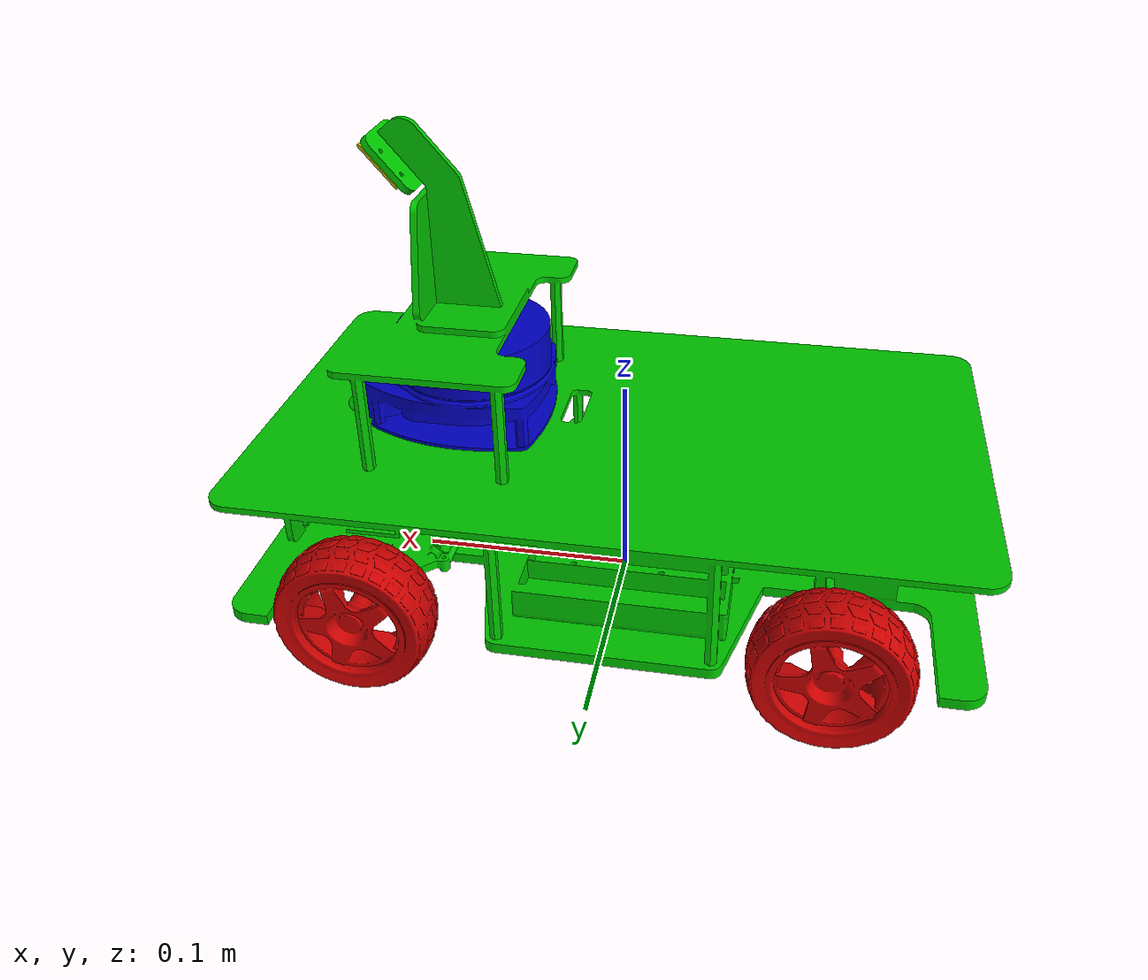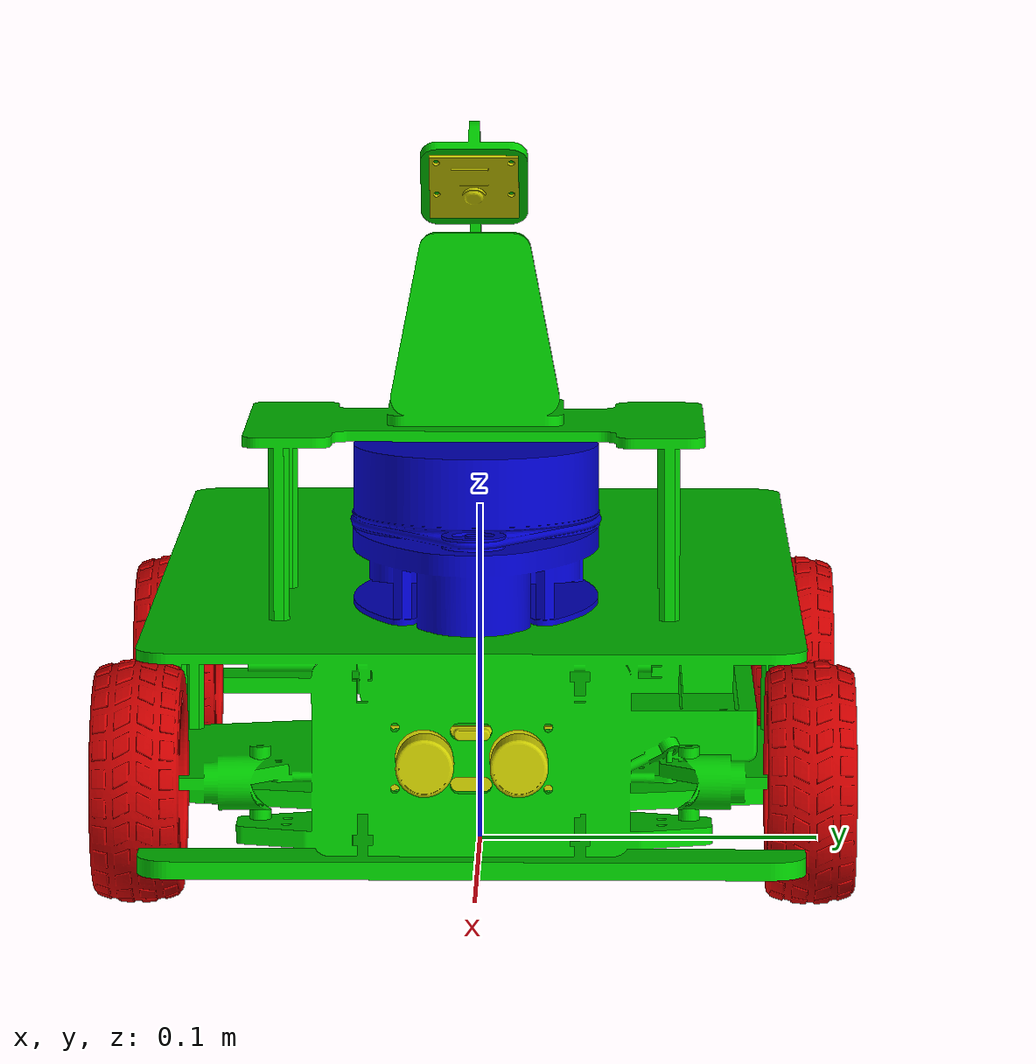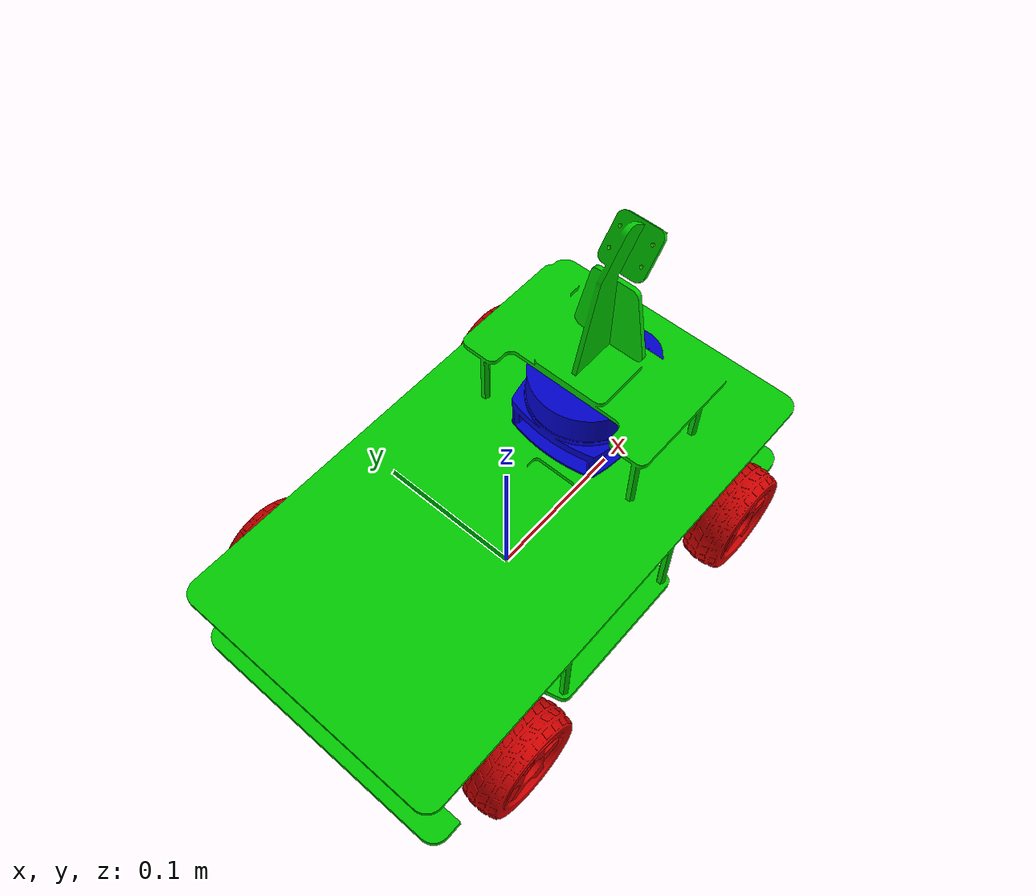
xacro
<?xml version="1.0"?>
<robot name="uni_car" xmlns:xacro="http://wiki.ros.org/xacro">
  <xacro:arg name="laser_visual" default="false"/>
  <xacro:arg name="imu_visual"   default="false"/>
  <xacro:arg name="camera_visual" default="false"/>
  <xacro:arg name="sonar_visual" default="false"/>

  <!-- Include xacro for materials -->
  <xacro:include filename="$(find uni_car)/urdf/materials.xacro"/>

  <!-- Properties -->
  <xacro:property name="robot_namespace" value=""/>

  <xacro:property name="steer_effort" value="10.0"/>
  <xacro:property name="steer_velocity" value="5.0"/>
  <xacro:property name="steer_limit_deg" value="30.0"/>

  <!-- Math constants -->
  <xacro:property name="deg_to_rad" value="0.01745329251994329577"/>
  <xacro:property name="math_pi"        value="3.141592653589793" />
  <xacro:property name="math_pi_over_2" value="1.5707963267948966" />
  <xacro:property name="math_pi_over_4" value="0.785398163397448" />

  <!-- Robot base dimensions -->
  <xacro:property name="base_length" value="0.300" />
  <xacro:property name="base_width" value="0.185" />
  <xacro:property name="base_height" value="0.07" />
  <xacro:property name="base_mass" value="0.5" />
  <xacro:property name="ground_clearance" value="0.019" />
  <xacro:property name="wheel_separation" value="0.190" />
  <xacro:property name="wheel_base" value="0.200" />

  <xacro:property name="wheel_separation_h" value="${wheel_base}" />
  <xacro:property name="wheel_separation_w" value="${wheel_separation}" />

  <!-- Wheel link dimensions -->
  <xacro:property name="wheel_radius" value="0.035" />
  <xacro:property name="wheel_thickness" value="0.025" />
  <xacro:property name="wheel_mass" value="0.02" />

  <!-- Steering link dimensions -->
  <xacro:property name="steer_radius" value="0.001" />
  <xacro:property name="steer_thickness" value="0.001" />
  <xacro:property name="steer_mass" value="0.001" />
  <xacro:property name="steer_offset" value="0.002" />
  <xacro:property name="steer_height" value="0.002" />

  <!-- Gazebo plugins -->
  <gazebo>
    <!-- Load ros_control plugin using the steer_bot_hardware_gazebo
    implementation of the hardware_interface::RobotHW -->
    <plugin name="gazebo_ros_control" filename="libgazebo_ros_control.so">
      <robotNamespace>${robot_namespace}</robotNamespace>
      <robotSimType>steer_bot_hardware_gazebo/SteerBotHardwareGazebo</robotSimType>
      <legacyModeNS>false</legacyModeNS>
    </plugin>
  </gazebo>

<!-- Base footprint) -->
<link name="base_footprint"/>

<joint name="base_footprint_joint" type="fixed">
  <origin xyz="0 0 ${ground_clearance}" rpy="0 0 0"/>
  <parent link="base_footprint"/>
  <child link="base_link"/>
</joint>

  <!-- Base link -->
  <link name="base_link">
    <visual>
      <origin xyz="0 0 0" rpy="0 0 0"/>
      <geometry>
        <mesh filename="package://uni_car/meshes/ROSCAR2_BASE.dae" scale="0.001 0.001 0.001"/>
      </geometry>
      <material name="green" />
    </visual>
    <collision>
      <origin xyz="0 0 ${base_height/2}" rpy="0 0 0"/>
      <geometry>
        <box size="${base_length} ${base_width} ${base_height}"/>
      </geometry>
    </collision>
    <inertial>
        <origin xyz="0 0 0" rpy="0 0 0"/>
        <mass value="0.85" />
        <inertia ixx="0.0022" ixy="0.0" ixz="0.0"
                 iyy="0.0021" iyz="0.0"
                 izz="0.0020" />
    </inertial>
  </link>

  <gazebo reference="base_link">
    <material>Gazebo/Green</material>
  </gazebo>

  <!-- Front steer and rear wheel joints required for ackermann_steering_controller -->
  <!-- Bicycle model front steer link (required for steer_drive_controller) -->
    <link name="front_steer_link">
      <visual>
        <origin xyz="0 0 0" rpy="0 0 0"/>
        <geometry>
          <cylinder radius="${steer_radius}" length="${steer_thickness}"/>
        </geometry>
        <material name="yellow" />
      </visual>
      <collision>
        <origin xyz="0 0 0" rpy="0 0 0"/>
        <geometry>
          <cylinder radius="${steer_radius}" length="${steer_thickness}"/>
        </geometry>
      </collision>
      <inertial>
        <origin xyz="0 0 0" rpy="0 0 0"/>
        <mass value="0.001" />
        <inertia ixx="0.001" ixy="0.0" ixz="0.0"
                 iyy="0.001" iyz="0.0"
                 izz="0.001" />
      </inertial>
    </link>

    <joint name="front_steer_joint" type="revolute">
      <parent link="base_link"/>
      <child link="front_steer_link"/>
      <origin xyz="${wheel_base/2} 0 ${wheel_radius-ground_clearance}" rpy="0 0 0"/>
      <axis xyz="0 0 1"/>
      <limit effort="${steer_effort}"
             lower="${-180.0 * deg_to_rad}" upper="${180.0 * deg_to_rad}"
             velocity="${steer_velocity}"/>
    </joint>

    <transmission name="front_steer_joint_trans">
      <type>transmission_interface/SimpleTransmission</type>
      <actuator name="front_steer_joint_motor">
        <mechanicalReduction>1</mechanicalReduction>
        <hardwareInterface>hardware_interface/PositionJointInterface</hardwareInterface>
      </actuator>
      <joint name="front_steer_joint">
        <hardwareInterface>hardware_interface/PositionJointInterface</hardwareInterface>
      </joint>
    </transmission>

    <gazebo reference="front_steer_link">
      <material>Gazebo/Yellow</material>
    </gazebo>

  <!-- Bicycle model rear wheel link (required for steer_drive_controller) -->
    <link name="rear_wheel_link">
      <visual>
        <origin xyz="0 0 0" rpy="0 0 0"/>
        <geometry>
          <cylinder radius="${steer_radius}" length="${steer_thickness}"/>
        </geometry>
        <material name="yellow" />
      </visual>
      <collision>
        <origin xyz="0 0 0" rpy="0 0 0"/>
        <geometry>
          <cylinder radius="${steer_radius}" length="${steer_thickness}"/>
        </geometry>
      </collision>
      <inertial>
        <origin xyz="0 0 0" rpy="0 0 0"/>
        <mass value="0.001" />
        <inertia ixx="0.001" ixy="0.0" ixz="0.0"
                 iyy="0.001" iyz="0.0"
                 izz="0.001" />
      </inertial>
    </link>

    <joint name="rear_wheel_joint" type="continuous">
      <parent link="base_link"/>
      <child link="rear_wheel_link"/>
      <origin xyz="-${wheel_base/2} 0 0" rpy="0 0 0"/>
      <axis xyz="0 0 1"/>
    </joint>

    <transmission name="rear_wheel_joint_trans">
      <type>transmission_interface/SimpleTransmission</type>
      <actuator name="rear_wheel_joint_motor">
        <mechanicalReduction>1</mechanicalReduction>
        <hardwareInterface>hardware_interface/VelocityJointInterface</hardwareInterface>
      </actuator>
      <joint name="rear_wheel_joint">
        <hardwareInterface>hardware_interface/VelocityJointInterface</hardwareInterface>
      </joint>
    </transmission>

    <gazebo reference="rear_wheel_link">
      <material>Gazebo/Yellow</material>
    </gazebo>

  <!-- front_right_steer, front_right_wheel -->
     <link name="front_right_steer_link">
      <visual>
        <origin xyz="0 0 0" rpy="0 0 0"/>
        <geometry>
          <cylinder radius="${steer_radius}" length="${steer_thickness}"/>
        </geometry>
        <material name="blue" />
      </visual>
      <collision>
        <origin xyz="0 0 0" rpy="0 0 0"/>
        <geometry>
          <cylinder radius="${steer_radius}" length="${steer_thickness}"/>
        </geometry>
      </collision>
      <inertial>
        <origin xyz="0 0 0" rpy="0 0 0"/>
        <mass value="0.001" />
        <inertia ixx="0.001" ixy="0.0" ixz="0.0"
                 iyy="0.001" iyz="0.0"
                 izz="0.001" />
      </inertial>
    </link>

    <joint name="front_right_steer_joint" type="revolute">
      <parent link="base_link"/>
      <child link="front_right_steer_link"/>
      <origin xyz="${wheel_base/2} -${wheel_separation/2} ${wheel_radius - ground_clearance}" rpy="0 0 0"/>
      <axis xyz="0 0 1"/>
      <limit effort="${steer_effort}"
             lower="-${steer_limit_deg * deg_to_rad}" upper="${steer_limit_deg * deg_to_rad}"
             velocity="${steer_velocity}"/>
    </joint>

    <gazebo reference="front_right_steer_link">
      <material>Gazebo/Blue</material>
    </gazebo>

    <link name="front_right_wheel_link">
      <visual>
        <origin xyz="0 0 0" rpy="${90*deg_to_rad} 0 0"/>
        <geometry>
          <mesh filename="package://uni_car/meshes/ROSCAR2_WheelRight.dae" scale="0.001 0.001 0.001"/>
        </geometry>
        <material name="red" />
      </visual>
      <collision>
        <origin xyz="0 0 0" rpy="0 0 0"/>
        <geometry>
          <cylinder radius="${wheel_radius}" length="${wheel_thickness}"/>
        </geometry>
      </collision>
      <inertial>
        <origin xyz="0 0 0" rpy="0 0 0"/>
        <mass value="0.028" />
        <inertia ixx="0.00001" ixy="0.0" ixz="0.0"
                 iyy="0.00001" iyz="0.0"
                 izz="0.00001" />
      </inertial>
    </link>

    <joint name="front_right_wheel_joint" type="continuous">
      <parent link="front_right_steer_link"/>
      <child link="front_right_wheel_link"/>
      <origin xyz="0 0 0" rpy="-${90*deg_to_rad} 0 0"/>
      <axis xyz="0 0 1"/>
    </joint>

    <transmission name="front_right_steer_joint_trans">
      <type>transmission_interface/SimpleTransmission</type>
      <actuator name="front_right_steer_joint_motor">
        <mechanicalReduction>1</mechanicalReduction>
        <hardwareInterface>hardware_interface/PositionJointInterface</hardwareInterface>
      </actuator>
      <joint name="front_right_steer_joint">
        <hardwareInterface>hardware_interface/PositionJointInterface</hardwareInterface>
      </joint>
    </transmission>

    <transmission name="front_right_wheel_joint_trans">
      <type>transmission_interface/SimpleTransmission</type>
      <actuator name="front_right_wheel_joint_motor">
        <mechanicalReduction>1</mechanicalReduction>
        <hardwareInterface>hardware_interface/VelocityJointInterface</hardwareInterface>
      </actuator>
      <joint name="front_right_wheel_joint">
        <hardwareInterface>hardware_interface/VelocityJointInterface</hardwareInterface>
      </joint>
    </transmission>

    <gazebo reference="front_right_wheel_link">
      <mu1>10</mu1>
      <mu2>10</mu2>
      <kp>1000000.0</kp>
      <kd>1.0</kd>
      <minDepth>0.001</minDepth>
      <maxVel>0.1</maxVel>
      <fdir1>1 0 0</fdir1>
      <material>Gazebo/Red</material>
    </gazebo>

  <!-- front_left_steer, front_left_wheel -->
    <link name="front_left_steer_link">
      <visual>
        <origin xyz="0 0 0" rpy="0 0 0"/>
        <geometry>
          <cylinder radius="${steer_radius}" length="${steer_thickness}"/>
        </geometry>
        <material name="blue" />
      </visual>
      <collision>
        <origin xyz="0 0 0" rpy="0 0 0"/>
        <geometry>
          <cylinder radius="${steer_radius}" length="${steer_thickness}"/>
        </geometry>
      </collision>
      <inertial>
        <origin xyz="0 0 0" rpy="0 0 0"/>
        <mass value="0.001" />
        <inertia ixx="0.001" ixy="0.0" ixz="0.0"
                 iyy="0.001" iyz="0.0"
                 izz="0.001" />
      </inertial>
    </link>

    <joint name="front_left_steer_joint" type="revolute">
      <parent link="base_link"/>
      <child link="front_left_steer_link"/>
      <origin xyz="${wheel_base/2} ${wheel_separation/2} ${wheel_radius - ground_clearance}" rpy="0 0 0"/>
      <axis xyz="0 0 1"/>
      <limit effort="${steer_effort}"
             lower="-${steer_limit_deg * deg_to_rad}" upper="${steer_limit_deg * deg_to_rad}"
             velocity="${steer_velocity}"/>
    </joint>

    <gazebo reference="front_left_steer_link">
      <material>Gazebo/Blue</material>
    </gazebo>

    <link name="front_left_wheel_link">
      <visual>
        <origin xyz="0 0 0" rpy="${90*deg_to_rad} 0 0"/>
        <geometry>
          <mesh filename="package://uni_car/meshes/ROSCAR2_WheelLeft.dae" scale="0.001 0.001 0.001"/>
        </geometry>
        <material name="red" />
      </visual>
      <collision>
        <origin xyz="0 0 0" rpy="0 0 0"/>
        <geometry>
          <cylinder radius="${wheel_radius}" length="${wheel_thickness}"/>
        </geometry>
      </collision>
      <inertial>
        <origin xyz="0 0 0" rpy="0 0 0"/>
        <mass value="0.028" />
        <inertia ixx="0.00001" ixy="0.0" ixz="0.0"
                 iyy="0.00001" iyz="0.0"
                 izz="0.00001" />
      </inertial>
    </link>

    <joint name="front_left_wheel_joint" type="continuous">
      <parent link="front_left_steer_link"/>
      <child link="front_left_wheel_link"/>
      <origin xyz="0 0 0" rpy="-${90*deg_to_rad} 0 0"/>
      <axis xyz="0 0 1"/>
    </joint>

    <gazebo reference="front_left_wheel_link">
      <mu1>10</mu1>
      <mu2>10</mu2>
      <kp>1000000.0</kp>
      <kd>1.0</kd>
      <minDepth>0.001</minDepth>
      <maxVel>0.1</maxVel>
      <fdir1>1 0 0</fdir1>
      <material>Gazebo/Red</material>
    </gazebo>

    <transmission name="front_left_steer_joint_trans">
      <type>transmission_interface/SimpleTransmission</type>
      <actuator name="front_left_steer_joint_motor">
        <mechanicalReduction>1</mechanicalReduction>
        <hardwareInterface>hardware_interface/PositionJointInterface</hardwareInterface>
      </actuator>
      <joint name="front_left_steer_joint">
        <hardwareInterface>hardware_interface/PositionJointInterface</hardwareInterface>
      </joint>
    </transmission>

    <transmission name="front_left_wheel_joint_trans">
      <type>transmission_interface/SimpleTransmission</type>
      <actuator name="front_left_wheel_joint_motor">
        <mechanicalReduction>1</mechanicalReduction>
        <hardwareInterface>hardware_interface/VelocityJointInterface</hardwareInterface>
      </actuator>
      <joint name="front_left_wheel_joint">
        <hardwareInterface>hardware_interface/VelocityJointInterface</hardwareInterface>
      </joint>
    </transmission>

  <!-- rear_right_wheel -->
    <link name="rear_right_wheel_link">
      <visual>
        <origin xyz="0 0 0" rpy="${90*deg_to_rad} 0 0"/>
        <geometry>
          <mesh filename="package://uni_car/meshes/ROSCAR2_WheelRight.dae" scale="0.001 0.001 0.001"/>
        </geometry>
        <material name="red" />
      </visual>
      <collision>
        <origin xyz="0 0 0" rpy="0 0 0"/>
        <geometry>
          <cylinder radius="${wheel_radius}" length="${wheel_thickness}"/>
        </geometry>
      </collision>
      <inertial>
        <origin xyz="0 0 0" rpy="0 0 0"/>
        <mass value="0.028" />
        <inertia ixx="0.00001" ixy="0.0" ixz="0.0"
                 iyy="0.00001" iyz="0.0"
                 izz="0.00001" />
      </inertial>
    </link>

    <joint name="rear_right_wheel_joint" type="continuous">
      <parent link="base_link"/>
      <child link="rear_right_wheel_link"/>
      <origin xyz="-${wheel_base/2} -${wheel_separation/2} ${wheel_radius-ground_clearance}" rpy="-${90*deg_to_rad} 0 0"/>
      <axis xyz="0 0 1"/>
    </joint>

    <transmission name="rear_right_wheel_joint_trans">
      <type>transmission_interface/SimpleTransmission</type>
      <actuator name="rear_right_wheel_joint_motor">
        <mechanicalReduction>1</mechanicalReduction>
        <hardwareInterface>hardware_interface/VelocityJointInterface</hardwareInterface>
      </actuator>
      <joint name="rear_right_wheel_joint">
        <hardwareInterface>hardware_interface/VelocityJointInterface</hardwareInterface>
      </joint>
    </transmission>

    <gazebo reference="rear_right_wheel_link">
      <mu1>10</mu1>
      <mu2>10</mu2>
      <kp>1000000.0</kp>
      <kd>1.0</kd>
      <minDepth>0.001</minDepth>
      <maxVel>0.1</maxVel>
      <fdir1>1 0 0</fdir1>
      <material>Gazebo/Red</material>
    </gazebo>

  <!-- rear_left_wheel -->
    <link name="rear_left_wheel_link">
      <visual>
        <origin xyz="0 0 0" rpy="${90*deg_to_rad} 0 0"/>
        <geometry>
          <mesh filename="package://uni_car/meshes/ROSCAR2_WheelLeft.dae" scale="0.001 0.001 0.001"/>
        </geometry>
        <material name="red" />
      </visual>
      <collision>
        <origin xyz="0 0 0" rpy="0 0 0"/>
        <geometry>
          <cylinder radius="${wheel_radius}" length="${wheel_thickness}"/>
        </geometry>
      </collision>
      <inertial>
        <origin xyz="0 0 0" rpy="0 0 0"/>
        <mass value="0.028" />
        <inertia ixx="0.00001" ixy="0.0" ixz="0.0"
                 iyy="0.00001" iyz="0.0"
                 izz="0.00001" />
      </inertial>
    </link>

    <joint name="rear_left_wheel_joint" type="continuous">
      <parent link="base_link"/>
      <child link="rear_left_wheel_link"/>
      <origin xyz="-${wheel_base/2} ${wheel_separation/2} ${wheel_radius-ground_clearance}" rpy="-${90*deg_to_rad} 0 0"/>
      <axis xyz="0 0 1"/>
    </joint>

    <transmission name="rear_left_wheel_joint_trans">
      <type>transmission_interface/SimpleTransmission</type>
      <actuator name="rear_left_wheel_joint_motor">
        <mechanicalReduction>1</mechanicalReduction>
        <hardwareInterface>hardware_interface/VelocityJointInterface</hardwareInterface>
      </actuator>
      <joint name="rear_left_wheel_joint">
        <hardwareInterface>hardware_interface/VelocityJointInterface</hardwareInterface>
      </joint>
    </transmission>

    <gazebo reference="rear_left_wheel_link">
      <mu1>10</mu1>
      <mu2>10</mu2>
      <kp>1000000.0</kp>
      <kd>1.0</kd>
      <minDepth>0.001</minDepth>
      <maxVel>0.1</maxVel>
      <fdir1>1 0 0</fdir1>
      <material>Gazebo/Red</material>
    </gazebo>

<!--
    imu_link
-->
  <link name="imu_link" />

  <joint name="imu_joint" type="fixed">
    <parent link="base_link"/>
    <child link="imu_link"/>
    <origin xyz="0 0 0" rpy="0 0 0"/>
  </joint>

<!--
    base_scan
-->
  <link name="base_scan">
    <visual>
      <origin xyz="0 0 0" rpy="0 0 0"/>
      <geometry>
        <mesh filename="package://uni_car/meshes/ROSCAR2_LiDAR.dae" scale="0.001 0.001 0.001"/>
      </geometry>
      <material name="blue" />
    </visual>
    <collision>
      <origin xyz="0 0 0.10" rpy="0 0 0"/>
      <geometry>
        <cylinder radius="0.030" length="0.020"/>
      </geometry>
    </collision>
    <inertial>
        <origin xyz="0 0 0" rpy="0 0 0"/>
        <mass value="0.114" />
        <inertia ixx="0.001" ixy="0.0" ixz="0.0"
                 iyy="0.001" iyz="0.0"
                 izz="0.001" />
      </inertial>
  </link>

  <gazebo reference="base_scan">
    <material>Gazebo/Blue</material>
  </gazebo>

  <joint name="scan_joint" type="fixed">
    <parent link="base_link"/>
    <child link="base_scan"/>
    <origin xyz="0.070 0 0.099" rpy="0 0 0"/>
  </joint>

<!--
    base_sonar
-->
  <link name="base_sonar">
    <visual>
      <origin xyz="0 0 0" rpy="0 0 0"/>
      <geometry>
        <mesh filename="package://uni_car/meshes/ROSCAR2_Sonar.dae" scale="0.001 0.001 0.001"/>
      </geometry>
      <material name="yellow" />
    </visual>
    <collision>
      <origin xyz="0 0 0.10" rpy="0 0 0"/>
      <geometry>
        <box size="0.010 0.050 0.010"/>
      </geometry>
    </collision>
    <inertial>
        <origin xyz="0 0 0" rpy="0 0 0"/>
        <mass value="0.005" />
        <inertia ixx="0.001" ixy="0.0" ixz="0.0"
                 iyy="0.001" iyz="0.0"
                 izz="0.001" />
      </inertial>
  </link>

  <gazebo reference="base_sonar">
    <material>Gazebo/Blue</material>
  </gazebo>

  <joint name="sonar_joint" type="fixed">
    <parent link="base_link"/>
    <child link="base_sonar"/>
    <origin xyz="0.153 0 0.031" rpy="0 0 0"/>
  </joint>

<!--
    base_camera
-->
  <link name="base_camera">
    <visual>
      <origin xyz="-0.005 0 0" rpy="0 0 0"/>
      <geometry>
        <mesh filename="package://uni_car/meshes/ROSCAR2_PiCameraV2.dae" scale="0.001 0.001 0.001"/>
      </geometry>
      <material name="yellow" />
    </visual>
    <collision>
      <origin xyz="-0.005 0 0" rpy="0 0 0"/>
      <geometry>
        <box size="0.001 0.015 0.015"/>
      </geometry>
    </collision>
    <inertial>
        <origin xyz="0 0 0" rpy="0 0 0"/>
        <mass value="0.005" />
        <inertia ixx="0.001" ixy="0.0" ixz="0.0"
                 iyy="0.001" iyz="0.0"
                 izz="0.001" />
      </inertial>
  </link>

  <gazebo reference="base_camera">
    <material>Gazebo/Blue</material>
  </gazebo>

  <joint name="camera_joint" type="fixed">
    <parent link="base_link"/>
    <child link="base_camera"/>
    <origin xyz="0.105 0 0.180" rpy="0 ${40*deg_to_rad} 0"/>
  </joint>

<!--
    base_camera2
-->
  <link name="base_camera2">
    <collision>
      <origin xyz="-0.005 0 0" rpy="0 0 0"/>
      <geometry>
        <box size="0.001 0.015 0.015"/>
      </geometry>
    </collision>
  </link>

  <joint name="camera_joint2" type="fixed">
    <parent link="base_link"/>
    <child link="base_camera2"/>
    <origin xyz="0.25 0 0.25" rpy="0 ${40*deg_to_rad} 0"/>
  </joint>

<!--
    imu_plugin
-->
  <gazebo reference="imu_link">
    <sensor type="imu" name="imu">
      <always_on>true</always_on>
      <visualize>$(arg imu_visual)</visualize>
    </sensor>
    <material>Gazebo/FlatBlack</material>
  </gazebo>
  <gazebo>
    <plugin name="imu_plugin" filename="libgazebo_ros_imu.so">
      <alwaysOn>true</alwaysOn>
      <bodyName>imu_link</bodyName>
      <topicName>imu</topicName>
      <serviceName>imu_service</serviceName>
      <gaussianNoise>0.0</gaussianNoise>
      <updateRate>200</updateRate>
      <imu>
        <noise>
          <type>gaussian</type>
          <rate>
            <mean>0.0</mean>
            <stddev>2e-4</stddev>
            <bias_mean>0.0000075</bias_mean>
            <bias_stddev>0.0000008</bias_stddev>
          </rate>
          <accel>
            <mean>0.0</mean>
            <stddev>1.7e-2</stddev>
            <bias_mean>0.1</bias_mean>
            <bias_stddev>0.001</bias_stddev>
          </accel>
        </noise>
      </imu>
    </plugin>
  </gazebo>

<!--
    base_scan plugin
-->
    <gazebo reference="base_scan">
        <material>Gazebo/LightBlue</material>
        <sensor type="ray" name="lds_lfcd_sensor">
            <pose>0 0 0 0 0 0</pose>
            <visualize>$(arg laser_visual)</visualize>
            <update_rate>5</update_rate>
            <ray>
                <scan>
                    <horizontal>
                        <samples>360</samples>
                        <resolution>1</resolution>
                        <min_angle>0.0</min_angle>
                        <max_angle>6.28319</max_angle>
                    </horizontal>
                </scan>
                <range>
                    <min>0.120</min>
                    <max>6.0</max>
                    <resolution>0.015</resolution>
                </range>
                <noise>
                    <type>gaussian</type>
                    <mean>0.0</mean>
                    <stddev>0.01</stddev>
                </noise>
            </ray>
            <plugin name="gazebo_ros_lds_lfcd_controller" filename="libgazebo_ros_laser.so">
                <topicName>scan</topicName>
                <frameName>base_scan</frameName>
            </plugin>
        </sensor>
    </gazebo>

<!--
    sonar plugin
-->
    <gazebo reference="base_sonar">
      <material>Gazebo/Grey</material>
      <sensor type="ray" name="sonar">
          <pose>0.25 0 0 0 0 0</pose>
          <visualize>$(arg sonar_visual)</visualize>
          <update_rate>5</update_rate>
          <ray>
            <scan>
              <horizontal>
                <samples>1</samples>
                <resolution>1.0</resolution>
                <min_angle>-0.025</min_angle>
                <max_angle>0.025</max_angle>
              </horizontal>
              <vertical>
                <samples>1</samples>
                <resolution>1</resolution>
                <min_angle>-0.025</min_angle>
                <max_angle>0.025</max_angle>
              </vertical>
            </scan>
            <range>
              <min>0.01</min>
              <max>4.00</max>
              <resolution>0.01</resolution>
            </range>
          </ray>
          <plugin filename="libgazebo_ros_range.so" name="gazebo_ros_range">
            <gaussianNoise>0.005</gaussianNoise>
            <alwaysOn>true</alwaysOn>
            <updateRate>5</updateRate>
            <topicName>/range</topicName>
            <frameName>base_sonar</frameName>
            <fov>0.05</fov>
            <radiation>ultrasound</radiation>
          </plugin>
        </sensor>
    </gazebo>

<!--
    pi-camera_plugin
-->
  <gazebo reference="base_camera2">
    <sensor type="camera" name="Pi Camera">
      <always_on>true</always_on>
      <visualize>$(arg camera_visual)</visualize>
      <camera>
          <horizontal_fov>1.085595</horizontal_fov>
          <image>
              <width>320</width>
              <height>240</height>
              <format>R8G8B8</format>
          </image>
          <clip>
              <near>0.030</near>
              <far>100</far>
          </clip>
      </camera>
      <plugin name="camera_controller" filename="libgazebo_ros_camera.so">
        <alwaysOn>true</alwaysOn>
        <updateRate>30.0</updateRate>
        <cameraName>camera</cameraName>
        <frameName>base_camera2</frameName>
        <imageTopicName>image_raw</imageTopicName>
        <cameraInfoTopicName>camera_info</cameraInfoTopicName>
        <hackBaseline>0.07</hackBaseline>
        <distortionK1>0.0</distortionK1>
        <distortionK2>0.0</distortionK2>
        <distortionK3>0.0</distortionK3>
        <distortionT1>0.0</distortionT1>
        <distortionT2>0.0</distortionT2>
      </plugin>
    </sensor>
  </gazebo>

</robot>

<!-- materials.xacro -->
<!--  xacro macros for robot materials.
 -->
<robot name="materials" xmlns:xacro="http://wiki.ros.org/xacro">
   <material name="red">
        <color rgba="0.8 0 0 1"/>
    </material>

    <material name="green">
        <color rgba="0 0.8 0 1"/>
    </material>

    <material name="blue">
        <color rgba="0 0 0.8 1"/>
    </material>

    <material name="yellow">
        <color rgba="0.8 0.8 0 1"/>
    </material>

    <material name="orange">
        <color rgba="0.8 0.25 0 1"/>
    </material>

    <material name="black">
        <color rgba="0 0 0 1"/>
    </material>

    <material name="dark_gray">
        <color rgba="0.5 0.5 0.5 1"/>
    </material>

    <material name="gray">
        <color rgba="0.753 0.753 0.753 1"/>
    </material>

    <material name="silver">
        <color rgba="0.88 0.88 0.88 1"/>
    </material>

    <material name="white">
        <color rgba="1 1 1 1"/>
    </material>
</robot>
